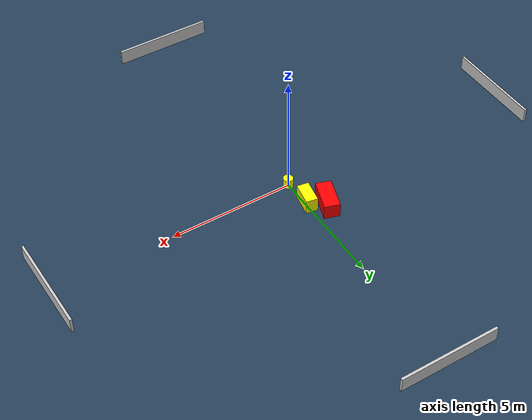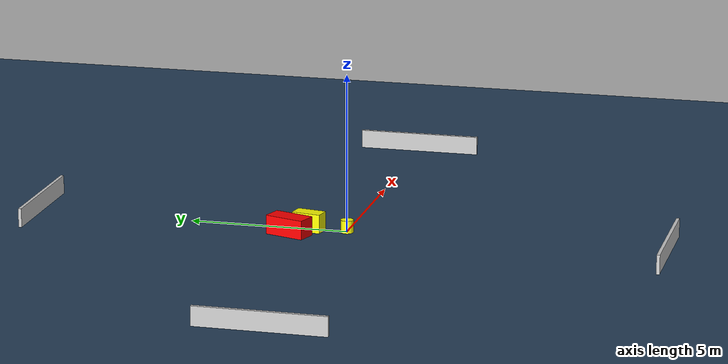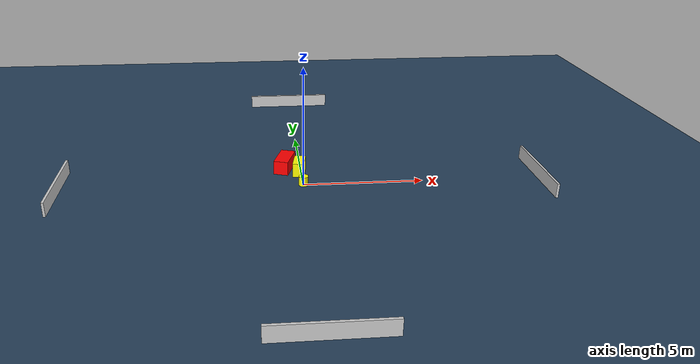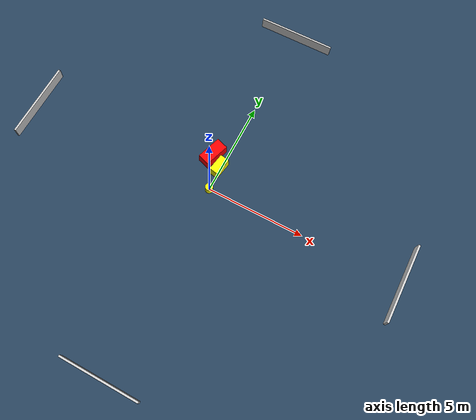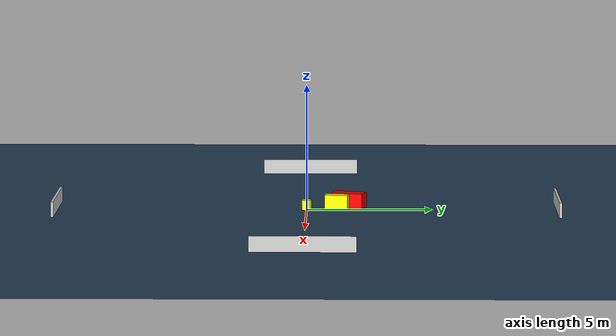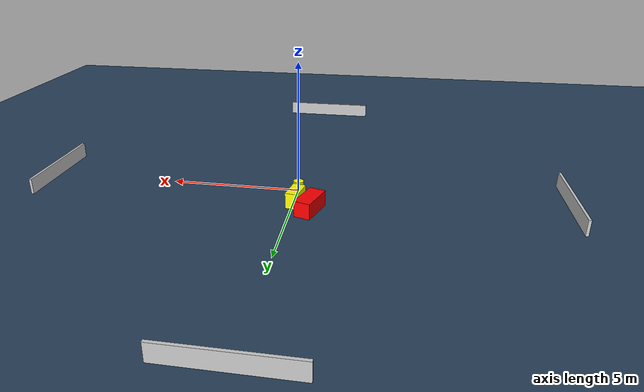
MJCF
<?xml version="1.0" ?>
<mujoco model="generated_environment">
  <option timestep="0.01" integrator="RK4" cone="elliptic"/>
  <default>
    <geom density="1"/>
  </default>
  <asset>
    <texture builtin="gradient" height="3072" name="skybox" rgb1="0.3 0.5 0.7" rgb2="0 0 0" type="skybox" width="512"/>
    <texture builtin="checker" height="300" name="groundplane" rgb1="0.2 0.3 0.4" rgb2="0.1 0.2 0.3" type="2d" width="300"/>
    <material name="groundplane" reflectance="0.2" texrepeat="5 5" texture="groundplane"/>
  </asset>
  <worldbody>
    <light dir="0 0 -1" directional="true" pos="0 0 1.5"/>
    <geom condim="3" friction="0.5 0.005 0.001" material="groundplane" name="floor" pos="0 0 0" size="0 0 0.05" type="plane"/>
    <body name="walls">
      <geom name="wall_1" condim="4" pos="-10.0 0.0 0.3" rgba="0.800000011920929 0.800000011920929 0.800000011920929 1.0" size="0.05 2.0 0.3" type="box"/>
      <geom name="wall_2" condim="4" pos="10.0 0.0 0.3" rgba="0.800000011920929 0.800000011920929 0.800000011920929 1.0" size="0.05 2.0 0.3" type="box"/>
      <geom name="wall_3" condim="4" pos="0.0 -10.0 0.3" rgba="0.800000011920929 0.800000011920929 0.800000011920929 1.0" size="2.0 0.05 0.3" type="box"/>
      <geom name="wall_4" condim="4" pos="0.0 10.0 0.3" rgba="0.800000011920929 0.800000011920929 0.800000011920929 1.0" size="2.0 0.05 0.3" type="box"/>
    </body>
    <body name="robot">
      <joint name="joint_x" type="slide" pos="0 0 0" axis="1 0 0"/>
      <joint name="joint_y" type="slide" pos="0 0 0" axis="0 1 0"/>
      <geom name="robot" type="cylinder" pos="0.0 0.0 0.2" size="0.2 0.2 0.0" mass="5.0" friction="1.0 0.005 0.0001" condim="4" rgba="1.0 1.0 0.0 1.0"/>
    </body>
    <body name="obstacle_1_movable">
      <geom name="obstacle_1_movable" condim="4" pos="-0.08836827609804448 1.1983444369495084 0.3" euler="0 0 349.8169688958163" friction="0.0 0.005 0.001" rgba="1.0 1.0 0.0 1.0" size="0.2386231433437152 0.46105748392422075 0.3" type="box" mass="0.1"/>
      <joint type="free"/>
    </body>
    <body name="obstacle_2_static">
      <geom name="obstacle_2_static" condim="4" pos="-0.6857409438086882 1.675041616190969 0.3" euler="0 0 71.89193354695121" friction="0.0 0.005 0.001" rgba="1.0 0.0 0.0 1.0" size="0.6495302899689579 0.31207723245475805 0.3" type="box"/>
    </body>
  </worldbody>
  <actuator>
    <motor name="actuator_x" joint="joint_x" gear="1" ctrlrange="-1 1"/>
    <motor name="actuator_y" joint="joint_y" gear="1" ctrlrange="-1 1"/>
  </actuator>
</mujoco>
